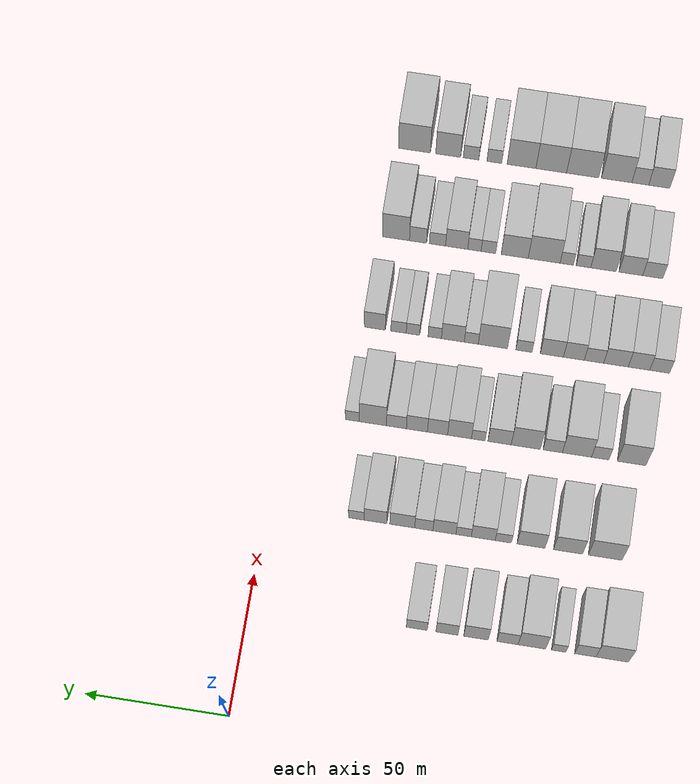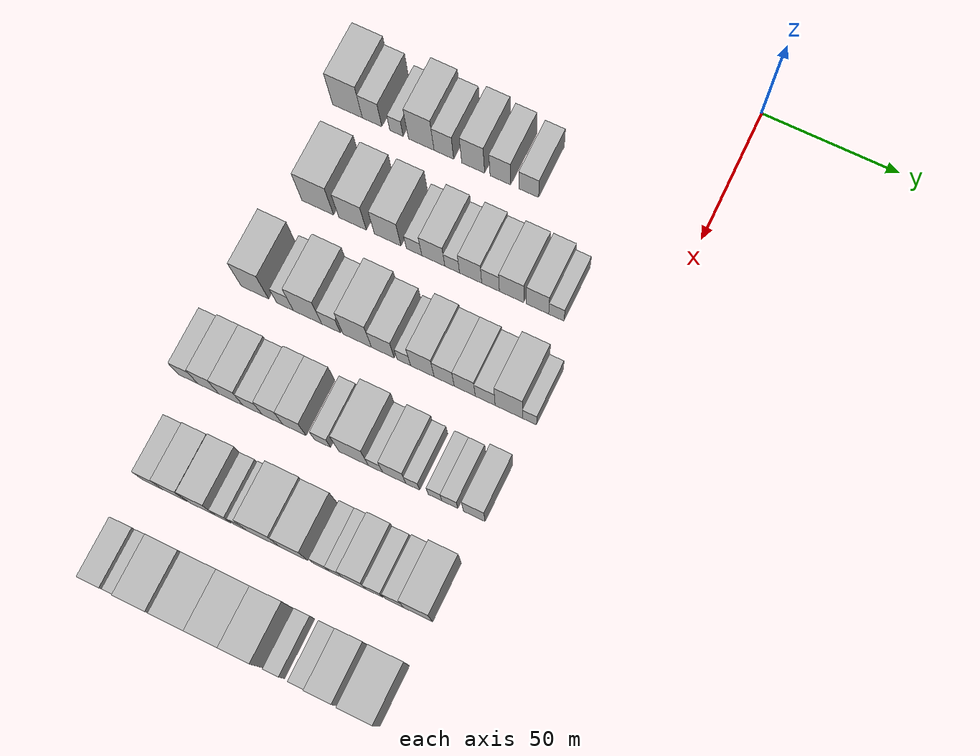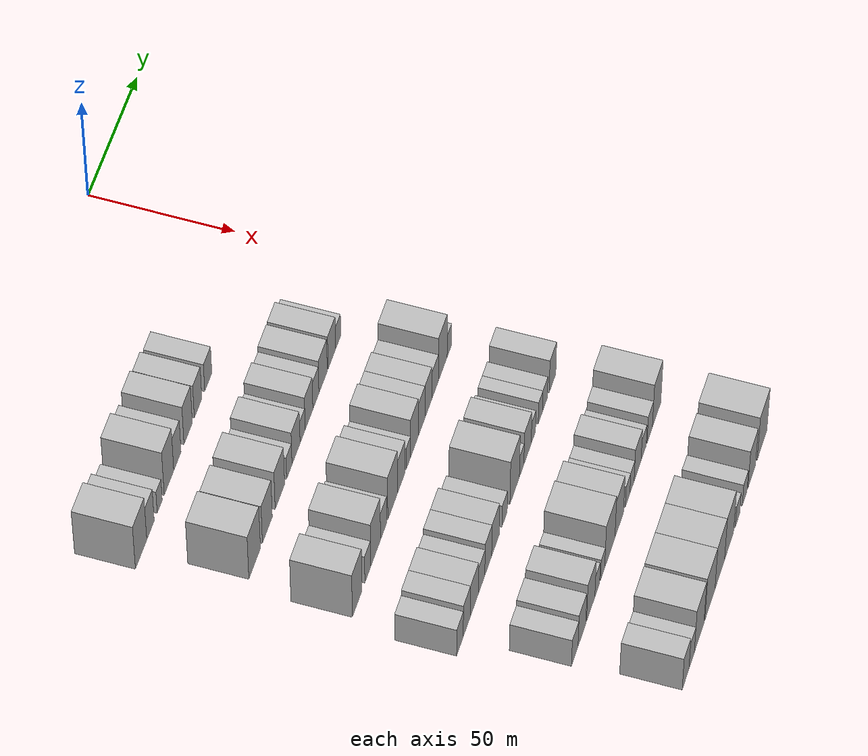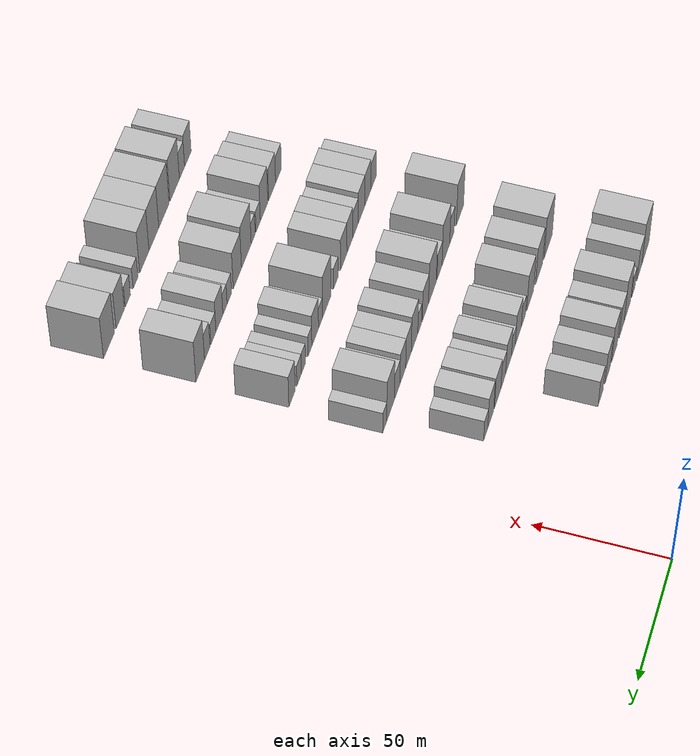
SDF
<sdf version="1.6">
 <world name="default">
  <model name="building_47">
   <static>1</static>
   <pose>50.0000 -126.5769 0 0.000000 0.000000 0.000000</pose>
   <link name="link">
    <pose>0 0 12.00 0 0 0</pose>
    <collision name="collision"><geometry><box><size>20.0000 11.2836 24.0000</size></box></geometry></collision>
    <visual name="visual">
     <cast_shadows>0</cast_shadows>
     <geometry><box><size>20.0000 11.2836 24.0000</size></box></geometry>
     <material>
      <script>
       <uri>model://HANNAS_wall/materials/scripts</uri>
       <uri>model://HANNAS_wall/materials/textures</uri>
       <name>vrc/HANNAS_wall</name>
      </script>
     </material>
    </visual>
   </link>
  </model>
  <model name="building_48">
   <static>1</static>
   <pose>50.0000 -117.2271 0 0.000000 0.000000 0.000000</pose>
   <link name="link">
    <pose>0 0 9.00 0 0 0</pose>
    <collision name="collision"><geometry><box><size>20.0000 7.4160 18.0000</size></box></geometry></collision>
    <visual name="visual">
     <cast_shadows>0</cast_shadows>
     <geometry><box><size>20.0000 7.4160 18.0000</size></box></geometry>
     <material>
      <script>
       <uri>model://HANNAS_wall/materials/scripts</uri>
       <uri>model://HANNAS_wall/materials/textures</uri>
       <name>vrc/HANNAS_wall</name>
      </script>
     </material>
    </visual>
   </link>
  </model>
  <model name="building_49">
   <static>1</static>
   <pose>50.0000 -108.0095 0 0.000000 0.000000 0.000000</pose>
   <link name="link">
    <pose>0 0 6.00 0 0 0</pose>
    <collision name="collision"><geometry><box><size>20.0000 5.0191 12.0000</size></box></geometry></collision>
    <visual name="visual">
     <cast_shadows>0</cast_shadows>
     <geometry><box><size>20.0000 5.0191 12.0000</size></box></geometry>
     <material>
      <script>
       <uri>model://HANNAS_wall/materials/scripts</uri>
       <uri>model://HANNAS_wall/materials/textures</uri>
       <name>vrc/HANNAS_wall</name>
      </script>
     </material>
    </visual>
   </link>
  </model>
  <model name="building_50">
   <static>1</static>
   <pose>50.0000 -98.6902 0 0.000000 0.000000 0.000000</pose>
   <link name="link">
    <pose>0 0 12.00 0 0 0</pose>
    <collision name="collision"><geometry><box><size>20.0000 9.6197 24.0000</size></box></geometry></collision>
    <visual name="visual">
     <cast_shadows>0</cast_shadows>
     <geometry><box><size>20.0000 9.6197 24.0000</size></box></geometry>
     <material>
      <script>
       <uri>model://HANNAS_wall/materials/scripts</uri>
       <uri>model://HANNAS_wall/materials/textures</uri>
       <name>vrc/HANNAS_wall</name>
      </script>
     </material>
    </visual>
   </link>
  </model>
  <model name="building_51">
   <static>1</static>
   <pose>50.0000 -90.1991 0 0.000000 0.000000 0.000000</pose>
   <link name="link">
    <pose>0 0 9.00 0 0 0</pose>
    <collision name="collision"><geometry><box><size>20.0000 7.3624 18.0000</size></box></geometry></collision>
    <visual name="visual">
     <cast_shadows>0</cast_shadows>
     <geometry><box><size>20.0000 7.3624 18.0000</size></box></geometry>
     <material>
      <script>
       <uri>model://HANNAS_wall/materials/scripts</uri>
       <uri>model://HANNAS_wall/materials/textures</uri>
       <name>vrc/HANNAS_wall</name>
      </script>
     </material>
    </visual>
   </link>
  </model>
  <model name="building_52">
   <static>1</static>
   <pose>50.0000 -79.2460 0 0.000000 0.000000 0.000000</pose>
   <link name="link">
    <pose>0 0 10.50 0 0 0</pose>
    <collision name="collision"><geometry><box><size>20.0000 8.5439 21.0000</size></box></geometry></collision>
    <visual name="visual">
     <cast_shadows>0</cast_shadows>
     <geometry><box><size>20.0000 8.5439 21.0000</size></box></geometry>
     <material>
      <script>
       <uri>model://HANNAS_wall/materials/scripts</uri>
       <uri>model://HANNAS_wall/materials/textures</uri>
       <name>vrc/HANNAS_wall</name>
      </script>
     </material>
    </visual>
   </link>
  </model>
  <model name="building_53">
   <static>1</static>
   <pose>50.0000 -69.1303 0 0.000000 0.000000 0.000000</pose>
   <link name="link">
    <pose>0 0 9.00 0 0 0</pose>
    <collision name="collision"><geometry><box><size>20.0000 7.6874 18.0000</size></box></geometry></collision>
    <visual name="visual">
     <cast_shadows>0</cast_shadows>
     <geometry><box><size>20.0000 7.6874 18.0000</size></box></geometry>
     <material>
      <script>
       <uri>model://HANNAS_wall/materials/scripts</uri>
       <uri>model://HANNAS_wall/materials/textures</uri>
       <name>vrc/HANNAS_wall</name>
      </script>
     </material>
    </visual>
   </link>
  </model>
  <model name="building_54">
   <static>1</static>
   <pose>50.0000 -58.6396 0 0.000000 0.000000 0.000000</pose>
   <link name="link">
    <pose>0 0 7.50 0 0 0</pose>
    <collision name="collision"><geometry><box><size>20.0000 7.2940 15.0000</size></box></geometry></collision>
    <visual name="visual">
     <cast_shadows>0</cast_shadows>
     <geometry><box><size>20.0000 7.2940 15.0000</size></box></geometry>
     <material>
      <script>
       <uri>model://HANNAS_wall/materials/scripts</uri>
       <uri>model://HANNAS_wall/materials/textures</uri>
       <name>vrc/HANNAS_wall</name>
      </script>
     </material>
    </visual>
   </link>
  </model>
  <model name="building_169">
   <static>1</static>
   <pose>85.0000 -119.5708 0 0.000000 0.000000 0.000000</pose>
   <link name="link">
    <pose>0 0 12.00 0 0 0</pose>
    <collision name="collision"><geometry><box><size>20.0000 11.8673 24.0000</size></box></geometry></collision>
    <visual name="visual">
     <cast_shadows>0</cast_shadows>
     <geometry><box><size>20.0000 11.8673 24.0000</size></box></geometry>
     <material>
      <script>
       <uri>model://HANNAS_wall/materials/scripts</uri>
       <uri>model://HANNAS_wall/materials/textures</uri>
       <name>vrc/HANNAS_wall</name>
      </script>
     </material>
    </visual>
   </link>
  </model>
  <model name="building_170">
   <static>1</static>
   <pose>85.0000 -106.5362 0 0.000000 0.000000 0.000000</pose>
   <link name="link">
    <pose>0 0 10.50 0 0 0</pose>
    <collision name="collision"><geometry><box><size>20.0000 10.2019 21.0000</size></box></geometry></collision>
    <visual name="visual">
     <cast_shadows>0</cast_shadows>
     <geometry><box><size>20.0000 10.2019 21.0000</size></box></geometry>
     <material>
      <script>
       <uri>model://HANNAS_wall/materials/scripts</uri>
       <uri>model://HANNAS_wall/materials/textures</uri>
       <name>vrc/HANNAS_wall</name>
      </script>
     </material>
    </visual>
   </link>
  </model>
  <model name="building_171">
   <static>1</static>
   <pose>85.0000 -93.5154 0 0.000000 0.000000 0.000000</pose>
   <link name="link">
    <pose>0 0 10.50 0 0 0</pose>
    <collision name="collision"><geometry><box><size>20.0000 9.8396 21.0000</size></box></geometry></collision>
    <visual name="visual">
     <cast_shadows>0</cast_shadows>
     <geometry><box><size>20.0000 9.8396 21.0000</size></box></geometry>
     <material>
      <script>
       <uri>model://HANNAS_wall/materials/scripts</uri>
       <uri>model://HANNAS_wall/materials/textures</uri>
       <name>vrc/HANNAS_wall</name>
      </script>
     </material>
    </visual>
   </link>
  </model>
  <model name="building_172">
   <static>1</static>
   <pose>85.0000 -83.7517 0 0.000000 0.000000 0.000000</pose>
   <link name="link">
    <pose>0 0 6.00 0 0 0</pose>
    <collision name="collision"><geometry><box><size>20.0000 5.6879 12.0000</size></box></geometry></collision>
    <visual name="visual">
     <cast_shadows>0</cast_shadows>
     <geometry><box><size>20.0000 5.6879 12.0000</size></box></geometry>
     <material>
      <script>
       <uri>model://HANNAS_wall/materials/scripts</uri>
       <uri>model://HANNAS_wall/materials/textures</uri>
       <name>vrc/HANNAS_wall</name>
      </script>
     </material>
    </visual>
   </link>
  </model>
  <model name="building_173">
   <static>1</static>
   <pose>85.0000 -76.6770 0 0.000000 0.000000 0.000000</pose>
   <link name="link">
    <pose>0 0 9.00 0 0 0</pose>
    <collision name="collision"><geometry><box><size>20.0000 8.4615 18.0000</size></box></geometry></collision>
    <visual name="visual">
     <cast_shadows>0</cast_shadows>
     <geometry><box><size>20.0000 8.4615 18.0000</size></box></geometry>
     <material>
      <script>
       <uri>model://HANNAS_wall/materials/scripts</uri>
       <uri>model://HANNAS_wall/materials/textures</uri>
       <name>vrc/HANNAS_wall</name>
      </script>
     </material>
    </visual>
   </link>
  </model>
  <model name="building_174">
   <static>1</static>
   <pose>85.0000 -69.7439 0 0.000000 0.000000 0.000000</pose>
   <link name="link">
    <pose>0 0 6.00 0 0 0</pose>
    <collision name="collision"><geometry><box><size>20.0000 5.4047 12.0000</size></box></geometry></collision>
    <visual name="visual">
     <cast_shadows>0</cast_shadows>
     <geometry><box><size>20.0000 5.4047 12.0000</size></box></geometry>
     <material>
      <script>
       <uri>model://HANNAS_wall/materials/scripts</uri>
       <uri>model://HANNAS_wall/materials/textures</uri>
       <name>vrc/HANNAS_wall</name>
      </script>
     </material>
    </visual>
   </link>
  </model>
  <model name="building_175">
   <static>1</static>
   <pose>85.0000 -62.9966 0 0.000000 0.000000 0.000000</pose>
   <link name="link">
    <pose>0 0 9.00 0 0 0</pose>
    <collision name="collision"><geometry><box><size>20.0000 8.0899 18.0000</size></box></geometry></collision>
    <visual name="visual">
     <cast_shadows>0</cast_shadows>
     <geometry><box><size>20.0000 8.0899 18.0000</size></box></geometry>
     <material>
      <script>
       <uri>model://HANNAS_wall/materials/scripts</uri>
       <uri>model://HANNAS_wall/materials/textures</uri>
       <name>vrc/HANNAS_wall</name>
      </script>
     </material>
    </visual>
   </link>
  </model>
  <model name="building_176">
   <static>1</static>
   <pose>85.0000 -55.7360 0 0.000000 0.000000 0.000000</pose>
   <link name="link">
    <pose>0 0 7.50 0 0 0</pose>
    <collision name="collision"><geometry><box><size>20.0000 6.4312 15.0000</size></box></geometry></collision>
    <visual name="visual">
     <cast_shadows>0</cast_shadows>
     <geometry><box><size>20.0000 6.4312 15.0000</size></box></geometry>
     <material>
      <script>
       <uri>model://HANNAS_wall/materials/scripts</uri>
       <uri>model://HANNAS_wall/materials/textures</uri>
       <name>vrc/HANNAS_wall</name>
      </script>
     </material>
    </visual>
   </link>
  </model>
  <model name="building_177">
   <static>1</static>
   <pose>85.0000 -48.1093 0 0.000000 0.000000 0.000000</pose>
   <link name="link">
    <pose>0 0 9.00 0 0 0</pose>
    <collision name="collision"><geometry><box><size>20.0000 8.8223 18.0000</size></box></geometry></collision>
    <visual name="visual">
     <cast_shadows>0</cast_shadows>
     <geometry><box><size>20.0000 8.8223 18.0000</size></box></geometry>
     <material>
      <script>
       <uri>model://HANNAS_wall/materials/scripts</uri>
       <uri>model://HANNAS_wall/materials/textures</uri>
       <name>vrc/HANNAS_wall</name>
      </script>
     </material>
    </visual>
   </link>
  </model>
  <model name="building_178">
   <static>1</static>
   <pose>85.0000 -38.6795 0 0.000000 0.000000 0.000000</pose>
   <link name="link">
    <pose>0 0 9.00 0 0 0</pose>
    <collision name="collision"><geometry><box><size>20.0000 8.0372 18.0000</size></box></geometry></collision>
    <visual name="visual">
     <cast_shadows>0</cast_shadows>
     <geometry><box><size>20.0000 8.0372 18.0000</size></box></geometry>
     <material>
      <script>
       <uri>model://HANNAS_wall/materials/scripts</uri>
       <uri>model://HANNAS_wall/materials/textures</uri>
       <name>vrc/HANNAS_wall</name>
      </script>
     </material>
    </visual>
   </link>
  </model>
  <model name="building_179">
   <static>1</static>
   <pose>85.0000 -31.9046 0 0.000000 0.000000 0.000000</pose>
   <link name="link">
    <pose>0 0 6.00 0 0 0</pose>
    <collision name="collision"><geometry><box><size>20.0000 5.5126 12.0000</size></box></geometry></collision>
    <visual name="visual">
     <cast_shadows>0</cast_shadows>
     <geometry><box><size>20.0000 5.5126 12.0000</size></box></geometry>
     <material>
      <script>
       <uri>model://HANNAS_wall/materials/scripts</uri>
       <uri>model://HANNAS_wall/materials/textures</uri>
       <name>vrc/HANNAS_wall</name>
      </script>
     </material>
    </visual>
   </link>
  </model>
  <model name="building_295">
   <static>1</static>
   <pose>120.0000 -124.4031 0 0.000000 0.000000 0.000000</pose>
   <link name="link">
    <pose>0 0 12.00 0 0 0</pose>
    <collision name="collision"><geometry><box><size>20.0000 10.1419 24.0000</size></box></geometry></collision>
    <visual name="visual">
     <cast_shadows>0</cast_shadows>
     <geometry><box><size>20.0000 10.1419 24.0000</size></box></geometry>
     <material>
      <script>
       <uri>model://HANNAS_wall/materials/scripts</uri>
       <uri>model://HANNAS_wall/materials/textures</uri>
       <name>vrc/HANNAS_wall</name>
      </script>
     </material>
    </visual>
   </link>
  </model>
  <model name="building_296">
   <static>1</static>
   <pose>120.0000 -113.2567 0 0.000000 0.000000 0.000000</pose>
   <link name="link">
    <pose>0 0 7.50 0 0 0</pose>
    <collision name="collision"><geometry><box><size>20.0000 6.1509 15.0000</size></box></geometry></collision>
    <visual name="visual">
     <cast_shadows>0</cast_shadows>
     <geometry><box><size>20.0000 6.1509 15.0000</size></box></geometry>
     <material>
      <script>
       <uri>model://HANNAS_wall/materials/scripts</uri>
       <uri>model://HANNAS_wall/materials/textures</uri>
       <name>vrc/HANNAS_wall</name>
      </script>
     </material>
    </visual>
   </link>
  </model>
  <model name="building_297">
   <static>1</static>
   <pose>120.0000 -104.9842 0 0.000000 0.000000 0.000000</pose>
   <link name="link">
    <pose>0 0 12.00 0 0 0</pose>
    <collision name="collision"><geometry><box><size>20.0000 10.3941 24.0000</size></box></geometry></collision>
    <visual name="visual">
     <cast_shadows>0</cast_shadows>
     <geometry><box><size>20.0000 10.3941 24.0000</size></box></geometry>
     <material>
      <script>
       <uri>model://HANNAS_wall/materials/scripts</uri>
       <uri>model://HANNAS_wall/materials/textures</uri>
       <name>vrc/HANNAS_wall</name>
      </script>
     </material>
    </visual>
   </link>
  </model>
  <model name="building_298">
   <static>1</static>
   <pose>120.0000 -96.3675 0 0.000000 0.000000 0.000000</pose>
   <link name="link">
    <pose>0 0 7.50 0 0 0</pose>
    <collision name="collision"><geometry><box><size>20.0000 6.8393 15.0000</size></box></geometry></collision>
    <visual name="visual">
     <cast_shadows>0</cast_shadows>
     <geometry><box><size>20.0000 6.8393 15.0000</size></box></geometry>
     <material>
      <script>
       <uri>model://HANNAS_wall/materials/scripts</uri>
       <uri>model://HANNAS_wall/materials/textures</uri>
       <name>vrc/HANNAS_wall</name>
      </script>
     </material>
    </visual>
   </link>
  </model>
  <model name="building_299">
   <static>1</static>
   <pose>120.0000 -86.7561 0 0.000000 0.000000 0.000000</pose>
   <link name="link">
    <pose>0 0 12.00 0 0 0</pose>
    <collision name="collision"><geometry><box><size>20.0000 10.3836 24.0000</size></box></geometry></collision>
    <visual name="visual">
     <cast_shadows>0</cast_shadows>
     <geometry><box><size>20.0000 10.3836 24.0000</size></box></geometry>
     <material>
      <script>
       <uri>model://HANNAS_wall/materials/scripts</uri>
       <uri>model://HANNAS_wall/materials/textures</uri>
       <name>vrc/HANNAS_wall</name>
      </script>
     </material>
    </visual>
   </link>
  </model>
  <model name="building_300">
   <static>1</static>
   <pose>120.0000 -77.4194 0 0.000000 0.000000 0.000000</pose>
   <link name="link">
    <pose>0 0 9.00 0 0 0</pose>
    <collision name="collision"><geometry><box><size>20.0000 8.2896 18.0000</size></box></geometry></collision>
    <visual name="visual">
     <cast_shadows>0</cast_shadows>
     <geometry><box><size>20.0000 8.2896 18.0000</size></box></geometry>
     <material>
      <script>
       <uri>model://HANNAS_wall/materials/scripts</uri>
       <uri>model://HANNAS_wall/materials/textures</uri>
       <name>vrc/HANNAS_wall</name>
      </script>
     </material>
    </visual>
   </link>
  </model>
  <model name="building_301">
   <static>1</static>
   <pose>120.0000 -69.8327 0 0.000000 0.000000 0.000000</pose>
   <link name="link">
    <pose>0 0 6.00 0 0 0</pose>
    <collision name="collision"><geometry><box><size>20.0000 4.8839 12.0000</size></box></geometry></collision>
    <visual name="visual">
     <cast_shadows>0</cast_shadows>
     <geometry><box><size>20.0000 4.8839 12.0000</size></box></geometry>
     <material>
      <script>
       <uri>model://HANNAS_wall/materials/scripts</uri>
       <uri>model://HANNAS_wall/materials/textures</uri>
       <name>vrc/HANNAS_wall</name>
      </script>
     </material>
    </visual>
   </link>
  </model>
  <model name="building_302">
   <static>1</static>
   <pose>120.0000 -63.1369 0 0.000000 0.000000 0.000000</pose>
   <link name="link">
    <pose>0 0 10.50 0 0 0</pose>
    <collision name="collision"><geometry><box><size>20.0000 8.5077 21.0000</size></box></geometry></collision>
    <visual name="visual">
     <cast_shadows>0</cast_shadows>
     <geometry><box><size>20.0000 8.5077 21.0000</size></box></geometry>
     <material>
      <script>
       <uri>model://HANNAS_wall/materials/scripts</uri>
       <uri>model://HANNAS_wall/materials/textures</uri>
       <name>vrc/HANNAS_wall</name>
      </script>
     </material>
    </visual>
   </link>
  </model>
  <model name="building_303">
   <static>1</static>
   <pose>120.0000 -55.2735 0 0.000000 0.000000 0.000000</pose>
   <link name="link">
    <pose>0 0 9.00 0 0 0</pose>
    <collision name="collision"><geometry><box><size>20.0000 7.2191 18.0000</size></box></geometry></collision>
    <visual name="visual">
     <cast_shadows>0</cast_shadows>
     <geometry><box><size>20.0000 7.2191 18.0000</size></box></geometry>
     <material>
      <script>
       <uri>model://HANNAS_wall/materials/scripts</uri>
       <uri>model://HANNAS_wall/materials/textures</uri>
       <name>vrc/HANNAS_wall</name>
      </script>
     </material>
    </visual>
   </link>
  </model>
  <model name="building_304">
   <static>1</static>
   <pose>120.0000 -47.9089 0 0.000000 0.000000 0.000000</pose>
   <link name="link">
    <pose>0 0 9.00 0 0 0</pose>
    <collision name="collision"><geometry><box><size>20.0000 7.5101 18.0000</size></box></geometry></collision>
    <visual name="visual">
     <cast_shadows>0</cast_shadows>
     <geometry><box><size>20.0000 7.5101 18.0000</size></box></geometry>
     <material>
      <script>
       <uri>model://HANNAS_wall/materials/scripts</uri>
       <uri>model://HANNAS_wall/materials/textures</uri>
       <name>vrc/HANNAS_wall</name>
      </script>
     </material>
    </visual>
   </link>
  </model>
  <model name="building_305">
   <static>1</static>
   <pose>120.0000 -40.5952 0 0.000000 0.000000 0.000000</pose>
   <link name="link">
    <pose>0 0 7.50 0 0 0</pose>
    <collision name="collision"><geometry><box><size>20.0000 7.1173 15.0000</size></box></geometry></collision>
    <visual name="visual">
     <cast_shadows>0</cast_shadows>
     <geometry><box><size>20.0000 7.1173 15.0000</size></box></geometry>
     <material>
      <script>
       <uri>model://HANNAS_wall/materials/scripts</uri>
       <uri>model://HANNAS_wall/materials/textures</uri>
       <name>vrc/HANNAS_wall</name>
      </script>
     </material>
    </visual>
   </link>
  </model>
  <model name="building_306">
   <static>1</static>
   <pose>120.0000 -32.1875 0 0.000000 0.000000 0.000000</pose>
   <link name="link">
    <pose>0 0 12.00 0 0 0</pose>
    <collision name="collision"><geometry><box><size>20.0000 9.6980 24.0000</size></box></geometry></collision>
    <visual name="visual">
     <cast_shadows>0</cast_shadows>
     <geometry><box><size>20.0000 9.6980 24.0000</size></box></geometry>
     <material>
      <script>
       <uri>model://HANNAS_wall/materials/scripts</uri>
       <uri>model://HANNAS_wall/materials/textures</uri>
       <name>vrc/HANNAS_wall</name>
      </script>
     </material>
    </visual>
   </link>
  </model>
  <model name="building_307">
   <static>1</static>
   <pose>120.0000 -24.8400 0 0.000000 0.000000 0.000000</pose>
   <link name="link">
    <pose>0 0 6.00 0 0 0</pose>
    <collision name="collision"><geometry><box><size>20.0000 4.9970 12.0000</size></box></geometry></collision>
    <visual name="visual">
     <cast_shadows>0</cast_shadows>
     <geometry><box><size>20.0000 4.9970 12.0000</size></box></geometry>
     <material>
      <script>
       <uri>model://HANNAS_wall/materials/scripts</uri>
       <uri>model://HANNAS_wall/materials/textures</uri>
       <name>vrc/HANNAS_wall</name>
      </script>
     </material>
    </visual>
   </link>
  </model>
  <model name="building_416">
   <static>1</static>
   <pose>155.0000 -130.0409 0 0.000000 0.000000 0.000000</pose>
   <link name="link">
    <pose>0 0 7.50 0 0 0</pose>
    <collision name="collision"><geometry><box><size>20.0000 7.1330 15.0000</size></box></geometry></collision>
    <visual name="visual">
     <cast_shadows>0</cast_shadows>
     <geometry><box><size>20.0000 7.1330 15.0000</size></box></geometry>
     <material>
      <script>
       <uri>model://HANNAS_wall/materials/scripts</uri>
       <uri>model://HANNAS_wall/materials/textures</uri>
       <name>vrc/HANNAS_wall</name>
      </script>
     </material>
    </visual>
   </link>
  </model>
  <model name="building_417">
   <static>1</static>
   <pose>155.0000 -122.6177 0 0.000000 0.000000 0.000000</pose>
   <link name="link">
    <pose>0 0 9.00 0 0 0</pose>
    <collision name="collision"><geometry><box><size>20.0000 7.7134 18.0000</size></box></geometry></collision>
    <visual name="visual">
     <cast_shadows>0</cast_shadows>
     <geometry><box><size>20.0000 7.7134 18.0000</size></box></geometry>
     <material>
      <script>
       <uri>model://HANNAS_wall/materials/scripts</uri>
       <uri>model://HANNAS_wall/materials/textures</uri>
       <name>vrc/HANNAS_wall</name>
      </script>
     </material>
    </visual>
   </link>
  </model>
  <model name="building_418">
   <static>1</static>
   <pose>155.0000 -114.3627 0 0.000000 0.000000 0.000000</pose>
   <link name="link">
    <pose>0 0 9.00 0 0 0</pose>
    <collision name="collision"><geometry><box><size>20.0000 8.7966 18.0000</size></box></geometry></collision>
    <visual name="visual">
     <cast_shadows>0</cast_shadows>
     <geometry><box><size>20.0000 8.7966 18.0000</size></box></geometry>
     <material>
      <script>
       <uri>model://HANNAS_wall/materials/scripts</uri>
       <uri>model://HANNAS_wall/materials/textures</uri>
       <name>vrc/HANNAS_wall</name>
      </script>
     </material>
    </visual>
   </link>
  </model>
  <model name="building_419">
   <static>1</static>
   <pose>155.0000 -106.4619 0 0.000000 0.000000 0.000000</pose>
   <link name="link">
    <pose>0 0 7.50 0 0 0</pose>
    <collision name="collision"><geometry><box><size>20.0000 7.0050 15.0000</size></box></geometry></collision>
    <visual name="visual">
     <cast_shadows>0</cast_shadows>
     <geometry><box><size>20.0000 7.0050 15.0000</size></box></geometry>
     <material>
      <script>
       <uri>model://HANNAS_wall/materials/scripts</uri>
       <uri>model://HANNAS_wall/materials/textures</uri>
       <name>vrc/HANNAS_wall</name>
      </script>
     </material>
    </visual>
   </link>
  </model>
  <model name="building_420">
   <static>1</static>
   <pose>155.0000 -99.2072 0 0.000000 0.000000 0.000000</pose>
   <link name="link">
    <pose>0 0 9.00 0 0 0</pose>
    <collision name="collision"><geometry><box><size>20.0000 7.5044 18.0000</size></box></geometry></collision>
    <visual name="visual">
     <cast_shadows>0</cast_shadows>
     <geometry><box><size>20.0000 7.5044 18.0000</size></box></geometry>
     <material>
      <script>
       <uri>model://HANNAS_wall/materials/scripts</uri>
       <uri>model://HANNAS_wall/materials/textures</uri>
       <name>vrc/HANNAS_wall</name>
      </script>
     </material>
    </visual>
   </link>
  </model>
  <model name="building_421">
   <static>1</static>
   <pose>155.0000 -91.2810 0 0.000000 0.000000 0.000000</pose>
   <link name="link">
    <pose>0 0 9.00 0 0 0</pose>
    <collision name="collision"><geometry><box><size>20.0000 8.3480 18.0000</size></box></geometry></collision>
    <visual name="visual">
     <cast_shadows>0</cast_shadows>
     <geometry><box><size>20.0000 8.3480 18.0000</size></box></geometry>
     <material>
      <script>
       <uri>model://HANNAS_wall/materials/scripts</uri>
       <uri>model://HANNAS_wall/materials/textures</uri>
       <name>vrc/HANNAS_wall</name>
      </script>
     </material>
    </visual>
   </link>
  </model>
  <model name="building_422">
   <static>1</static>
   <pose>155.0000 -81.1856 0 0.000000 0.000000 0.000000</pose>
   <link name="link">
    <pose>0 0 6.00 0 0 0</pose>
    <collision name="collision"><geometry><box><size>20.0000 5.8427 12.0000</size></box></geometry></collision>
    <visual name="visual">
     <cast_shadows>0</cast_shadows>
     <geometry><box><size>20.0000 5.8427 12.0000</size></box></geometry>
     <material>
      <script>
       <uri>model://HANNAS_wall/materials/scripts</uri>
       <uri>model://HANNAS_wall/materials/textures</uri>
       <name>vrc/HANNAS_wall</name>
      </script>
     </material>
    </visual>
   </link>
  </model>
  <model name="building_423">
   <static>1</static>
   <pose>155.0000 -69.9899 0 0.000000 0.000000 0.000000</pose>
   <link name="link">
    <pose>0 0 12.00 0 0 0</pose>
    <collision name="collision"><geometry><box><size>20.0000 10.5487 24.0000</size></box></geometry></collision>
    <visual name="visual">
     <cast_shadows>0</cast_shadows>
     <geometry><box><size>20.0000 10.5487 24.0000</size></box></geometry>
     <material>
      <script>
       <uri>model://HANNAS_wall/materials/scripts</uri>
       <uri>model://HANNAS_wall/materials/textures</uri>
       <name>vrc/HANNAS_wall</name>
      </script>
     </material>
    </visual>
   </link>
  </model>
  <model name="building_424">
   <static>1</static>
   <pose>155.0000 -62.1846 0 0.000000 0.000000 0.000000</pose>
   <link name="link">
    <pose>0 0 6.00 0 0 0</pose>
    <collision name="collision"><geometry><box><size>20.0000 5.0617 12.0000</size></box></geometry></collision>
    <visual name="visual">
     <cast_shadows>0</cast_shadows>
     <geometry><box><size>20.0000 5.0617 12.0000</size></box></geometry>
     <material>
      <script>
       <uri>model://HANNAS_wall/materials/scripts</uri>
       <uri>model://HANNAS_wall/materials/textures</uri>
       <name>vrc/HANNAS_wall</name>
      </script>
     </material>
    </visual>
   </link>
  </model>
  <model name="building_425">
   <static>1</static>
   <pose>155.0000 -55.5262 0 0.000000 0.000000 0.000000</pose>
   <link name="link">
    <pose>0 0 9.00 0 0 0</pose>
    <collision name="collision"><geometry><box><size>20.0000 8.2551 18.0000</size></box></geometry></collision>
    <visual name="visual">
     <cast_shadows>0</cast_shadows>
     <geometry><box><size>20.0000 8.2551 18.0000</size></box></geometry>
     <material>
      <script>
       <uri>model://HANNAS_wall/materials/scripts</uri>
       <uri>model://HANNAS_wall/materials/textures</uri>
       <name>vrc/HANNAS_wall</name>
      </script>
     </material>
    </visual>
   </link>
  </model>
  <model name="building_426">
   <static>1</static>
   <pose>155.0000 -48.9651 0 0.000000 0.000000 0.000000</pose>
   <link name="link">
    <pose>0 0 6.00 0 0 0</pose>
    <collision name="collision"><geometry><box><size>20.0000 4.8670 12.0000</size></box></geometry></collision>
    <visual name="visual">
     <cast_shadows>0</cast_shadows>
     <geometry><box><size>20.0000 4.8670 12.0000</size></box></geometry>
     <material>
      <script>
       <uri>model://HANNAS_wall/materials/scripts</uri>
       <uri>model://HANNAS_wall/materials/textures</uri>
       <name>vrc/HANNAS_wall</name>
      </script>
     </material>
    </visual>
   </link>
  </model>
  <model name="building_427">
   <static>1</static>
   <pose>155.0000 -41.1025 0 0.000000 0.000000 0.000000</pose>
   <link name="link">
    <pose>0 0 6.00 0 0 0</pose>
    <collision name="collision"><geometry><box><size>20.0000 4.8581 12.0000</size></box></geometry></collision>
    <visual name="visual">
     <cast_shadows>0</cast_shadows>
     <geometry><box><size>20.0000 4.8581 12.0000</size></box></geometry>
     <material>
      <script>
       <uri>model://HANNAS_wall/materials/scripts</uri>
       <uri>model://HANNAS_wall/materials/textures</uri>
       <name>vrc/HANNAS_wall</name>
      </script>
     </material>
    </visual>
   </link>
  </model>
  <model name="building_428">
   <static>1</static>
   <pose>155.0000 -35.8817 0 0.000000 0.000000 0.000000</pose>
   <link name="link">
    <pose>0 0 6.00 0 0 0</pose>
    <collision name="collision"><geometry><box><size>20.0000 5.5835 12.0000</size></box></geometry></collision>
    <visual name="visual">
     <cast_shadows>0</cast_shadows>
     <geometry><box><size>20.0000 5.5835 12.0000</size></box></geometry>
     <material>
      <script>
       <uri>model://HANNAS_wall/materials/scripts</uri>
       <uri>model://HANNAS_wall/materials/textures</uri>
       <name>vrc/HANNAS_wall</name>
      </script>
     </material>
    </visual>
   </link>
  </model>
  <model name="building_429">
   <static>1</static>
   <pose>155.0000 -27.2959 0 0.000000 0.000000 0.000000</pose>
   <link name="link">
    <pose>0 0 9.00 0 0 0</pose>
    <collision name="collision"><geometry><box><size>20.0000 7.5882 18.0000</size></box></geometry></collision>
    <visual name="visual">
     <cast_shadows>0</cast_shadows>
     <geometry><box><size>20.0000 7.5882 18.0000</size></box></geometry>
     <material>
      <script>
       <uri>model://HANNAS_wall/materials/scripts</uri>
       <uri>model://HANNAS_wall/materials/textures</uri>
       <name>vrc/HANNAS_wall</name>
      </script>
     </material>
    </visual>
   </link>
  </model>
  <model name="building_548">
   <static>1</static>
   <pose>190.0000 -123.2478 0 0.000000 0.000000 0.000000</pose>
   <link name="link">
    <pose>0 0 7.50 0 0 0</pose>
    <collision name="collision"><geometry><box><size>20.0000 7.3060 15.0000</size></box></geometry></collision>
    <visual name="visual">
     <cast_shadows>0</cast_shadows>
     <geometry><box><size>20.0000 7.3060 15.0000</size></box></geometry>
     <material>
      <script>
       <uri>model://HANNAS_wall/materials/scripts</uri>
       <uri>model://HANNAS_wall/materials/textures</uri>
       <name>vrc/HANNAS_wall</name>
      </script>
     </material>
    </visual>
   </link>
  </model>
  <model name="building_549">
   <static>1</static>
   <pose>190.0000 -115.2817 0 0.000000 0.000000 0.000000</pose>
   <link name="link">
    <pose>0 0 9.00 0 0 0</pose>
    <collision name="collision"><geometry><box><size>20.0000 8.6262 18.0000</size></box></geometry></collision>
    <visual name="visual">
     <cast_shadows>0</cast_shadows>
     <geometry><box><size>20.0000 8.6262 18.0000</size></box></geometry>
     <material>
      <script>
       <uri>model://HANNAS_wall/materials/scripts</uri>
       <uri>model://HANNAS_wall/materials/textures</uri>
       <name>vrc/HANNAS_wall</name>
      </script>
     </material>
    </visual>
   </link>
  </model>
  <model name="building_550">
   <static>1</static>
   <pose>190.0000 -105.3134 0 0.000000 0.000000 0.000000</pose>
   <link name="link">
    <pose>0 0 10.50 0 0 0</pose>
    <collision name="collision"><geometry><box><size>20.0000 9.3105 21.0000</size></box></geometry></collision>
    <visual name="visual">
     <cast_shadows>0</cast_shadows>
     <geometry><box><size>20.0000 9.3105 21.0000</size></box></geometry>
     <material>
      <script>
       <uri>model://HANNAS_wall/materials/scripts</uri>
       <uri>model://HANNAS_wall/materials/textures</uri>
       <name>vrc/HANNAS_wall</name>
      </script>
     </material>
    </visual>
   </link>
  </model>
  <model name="building_551">
   <static>1</static>
   <pose>190.0000 -98.0036 0 0.000000 0.000000 0.000000</pose>
   <link name="link">
    <pose>0 0 6.00 0 0 0</pose>
    <collision name="collision"><geometry><box><size>20.0000 5.3091 12.0000</size></box></geometry></collision>
    <visual name="visual">
     <cast_shadows>0</cast_shadows>
     <geometry><box><size>20.0000 5.3091 12.0000</size></box></geometry>
     <material>
      <script>
       <uri>model://HANNAS_wall/materials/scripts</uri>
       <uri>model://HANNAS_wall/materials/textures</uri>
       <name>vrc/HANNAS_wall</name>
      </script>
     </material>
    </visual>
   </link>
  </model>
  <model name="building_552">
   <static>1</static>
   <pose>190.0000 -91.9282 0 0.000000 0.000000 0.000000</pose>
   <link name="link">
    <pose>0 0 6.00 0 0 0</pose>
    <collision name="collision"><geometry><box><size>20.0000 4.8417 12.0000</size></box></geometry></collision>
    <visual name="visual">
     <cast_shadows>0</cast_shadows>
     <geometry><box><size>20.0000 4.8417 12.0000</size></box></geometry>
     <material>
      <script>
       <uri>model://HANNAS_wall/materials/scripts</uri>
       <uri>model://HANNAS_wall/materials/textures</uri>
       <name>vrc/HANNAS_wall</name>
      </script>
     </material>
    </visual>
   </link>
  </model>
  <model name="building_553">
   <static>1</static>
   <pose>190.0000 -83.6735 0 0.000000 0.000000 0.000000</pose>
   <link name="link">
    <pose>0 0 12.00 0 0 0</pose>
    <collision name="collision"><geometry><box><size>20.0000 11.6678 24.0000</size></box></geometry></collision>
    <visual name="visual">
     <cast_shadows>0</cast_shadows>
     <geometry><box><size>20.0000 11.6678 24.0000</size></box></geometry>
     <material>
      <script>
       <uri>model://HANNAS_wall/materials/scripts</uri>
       <uri>model://HANNAS_wall/materials/textures</uri>
       <name>vrc/HANNAS_wall</name>
      </script>
     </material>
    </visual>
   </link>
  </model>
  <model name="building_554">
   <static>1</static>
   <pose>190.0000 -72.9176 0 0.000000 0.000000 0.000000</pose>
   <link name="link">
    <pose>0 0 10.50 0 0 0</pose>
    <collision name="collision"><geometry><box><size>20.0000 9.8439 21.0000</size></box></geometry></collision>
    <visual name="visual">
     <cast_shadows>0</cast_shadows>
     <geometry><box><size>20.0000 9.8439 21.0000</size></box></geometry>
     <material>
      <script>
       <uri>model://HANNAS_wall/materials/scripts</uri>
       <uri>model://HANNAS_wall/materials/textures</uri>
       <name>vrc/HANNAS_wall</name>
      </script>
     </material>
    </visual>
   </link>
  </model>
  <model name="building_555">
   <static>1</static>
   <pose>190.0000 -63.3118 0 0.000000 0.000000 0.000000</pose>
   <link name="link">
    <pose>0 0 6.00 0 0 0</pose>
    <collision name="collision"><geometry><box><size>20.0000 5.3678 12.0000</size></box></geometry></collision>
    <visual name="visual">
     <cast_shadows>0</cast_shadows>
     <geometry><box><size>20.0000 5.3678 12.0000</size></box></geometry>
     <material>
      <script>
       <uri>model://HANNAS_wall/materials/scripts</uri>
       <uri>model://HANNAS_wall/materials/textures</uri>
       <name>vrc/HANNAS_wall</name>
      </script>
     </material>
    </visual>
   </link>
  </model>
  <model name="building_556">
   <static>1</static>
   <pose>190.0000 -58.1816 0 0.000000 0.000000 0.000000</pose>
   <link name="link">
    <pose>0 0 6.00 0 0 0</pose>
    <collision name="collision"><geometry><box><size>20.0000 4.8926 12.0000</size></box></geometry></collision>
    <visual name="visual">
     <cast_shadows>0</cast_shadows>
     <geometry><box><size>20.0000 4.8926 12.0000</size></box></geometry>
     <material>
      <script>
       <uri>model://HANNAS_wall/materials/scripts</uri>
       <uri>model://HANNAS_wall/materials/textures</uri>
       <name>vrc/HANNAS_wall</name>
      </script>
     </material>
    </visual>
   </link>
  </model>
  <model name="building_557">
   <static>1</static>
   <pose>190.0000 -51.6828 0 0.000000 0.000000 0.000000</pose>
   <link name="link">
    <pose>0 0 9.00 0 0 0</pose>
    <collision name="collision"><geometry><box><size>20.0000 8.1050 18.0000</size></box></geometry></collision>
    <visual name="visual">
     <cast_shadows>0</cast_shadows>
     <geometry><box><size>20.0000 8.1050 18.0000</size></box></geometry>
     <material>
      <script>
       <uri>model://HANNAS_wall/materials/scripts</uri>
       <uri>model://HANNAS_wall/materials/textures</uri>
       <name>vrc/HANNAS_wall</name>
      </script>
     </material>
    </visual>
   </link>
  </model>
  <model name="building_558">
   <static>1</static>
   <pose>190.0000 -44.6524 0 0.000000 0.000000 0.000000</pose>
   <link name="link">
    <pose>0 0 6.00 0 0 0</pose>
    <collision name="collision"><geometry><box><size>20.0000 5.9557 12.0000</size></box></geometry></collision>
    <visual name="visual">
     <cast_shadows>0</cast_shadows>
     <geometry><box><size>20.0000 5.9557 12.0000</size></box></geometry>
     <material>
      <script>
       <uri>model://HANNAS_wall/materials/scripts</uri>
       <uri>model://HANNAS_wall/materials/textures</uri>
       <name>vrc/HANNAS_wall</name>
      </script>
     </material>
    </visual>
   </link>
  </model>
  <model name="building_559">
   <static>1</static>
   <pose>190.0000 -37.5330 0 0.000000 0.000000 0.000000</pose>
   <link name="link">
    <pose>0 0 7.50 0 0 0</pose>
    <collision name="collision"><geometry><box><size>20.0000 6.2831 15.0000</size></box></geometry></collision>
    <visual name="visual">
     <cast_shadows>0</cast_shadows>
     <geometry><box><size>20.0000 6.2831 15.0000</size></box></geometry>
     <material>
      <script>
       <uri>model://HANNAS_wall/materials/scripts</uri>
       <uri>model://HANNAS_wall/materials/textures</uri>
       <name>vrc/HANNAS_wall</name>
      </script>
     </material>
    </visual>
   </link>
  </model>
  <model name="building_560">
   <static>1</static>
   <pose>190.0000 -29.4251 0 0.000000 0.000000 0.000000</pose>
   <link name="link">
    <pose>0 0 12.00 0 0 0</pose>
    <collision name="collision"><geometry><box><size>20.0000 9.9327 24.0000</size></box></geometry></collision>
    <visual name="visual">
     <cast_shadows>0</cast_shadows>
     <geometry><box><size>20.0000 9.9327 24.0000</size></box></geometry>
     <material>
      <script>
       <uri>model://HANNAS_wall/materials/scripts</uri>
       <uri>model://HANNAS_wall/materials/textures</uri>
       <name>vrc/HANNAS_wall</name>
      </script>
     </material>
    </visual>
   </link>
  </model>
  <model name="building_681">
   <static>1</static>
   <pose>225.0000 -121.3058 0 0.000000 0.000000 0.000000</pose>
   <link name="link">
    <pose>0 0 9.00 0 0 0</pose>
    <collision name="collision"><geometry><box><size>20.0000 7.7989 18.0000</size></box></geometry></collision>
    <visual name="visual">
     <cast_shadows>0</cast_shadows>
     <geometry><box><size>20.0000 7.7989 18.0000</size></box></geometry>
     <material>
      <script>
       <uri>model://HANNAS_wall/materials/scripts</uri>
       <uri>model://HANNAS_wall/materials/textures</uri>
       <name>vrc/HANNAS_wall</name>
      </script>
     </material>
    </visual>
   </link>
  </model>
  <model name="building_682">
   <static>1</static>
   <pose>225.0000 -114.3039 0 0.000000 0.000000 0.000000</pose>
   <link name="link">
    <pose>0 0 7.50 0 0 0</pose>
    <collision name="collision"><geometry><box><size>20.0000 6.2049 15.0000</size></box></geometry></collision>
    <visual name="visual">
     <cast_shadows>0</cast_shadows>
     <geometry><box><size>20.0000 6.2049 15.0000</size></box></geometry>
     <material>
      <script>
       <uri>model://HANNAS_wall/materials/scripts</uri>
       <uri>model://HANNAS_wall/materials/textures</uri>
       <name>vrc/HANNAS_wall</name>
      </script>
     </material>
    </visual>
   </link>
  </model>
  <model name="building_683">
   <static>1</static>
   <pose>225.0000 -105.6137 0 0.000000 0.000000 0.000000</pose>
   <link name="link">
    <pose>0 0 12.00 0 0 0</pose>
    <collision name="collision"><geometry><box><size>20.0000 11.1754 24.0000</size></box></geometry></collision>
    <visual name="visual">
     <cast_shadows>0</cast_shadows>
     <geometry><box><size>20.0000 11.1754 24.0000</size></box></geometry>
     <material>
      <script>
       <uri>model://HANNAS_wall/materials/scripts</uri>
       <uri>model://HANNAS_wall/materials/textures</uri>
       <name>vrc/HANNAS_wall</name>
      </script>
     </material>
    </visual>
   </link>
  </model>
  <model name="building_684">
   <static>1</static>
   <pose>225.0000 -93.0781 0 0.000000 0.000000 0.000000</pose>
   <link name="link">
    <pose>0 0 12.00 0 0 0</pose>
    <collision name="collision"><geometry><box><size>20.0000 11.8959 24.0000</size></box></geometry></collision>
    <visual name="visual">
     <cast_shadows>0</cast_shadows>
     <geometry><box><size>20.0000 11.8959 24.0000</size></box></geometry>
     <material>
      <script>
       <uri>model://HANNAS_wall/materials/scripts</uri>
       <uri>model://HANNAS_wall/materials/textures</uri>
       <name>vrc/HANNAS_wall</name>
      </script>
     </material>
    </visual>
   </link>
  </model>
  <model name="building_685">
   <static>1</static>
   <pose>225.0000 -81.4752 0 0.000000 0.000000 0.000000</pose>
   <link name="link">
    <pose>0 0 12.00 0 0 0</pose>
    <collision name="collision"><geometry><box><size>20.0000 11.3098 24.0000</size></box></geometry></collision>
    <visual name="visual">
     <cast_shadows>0</cast_shadows>
     <geometry><box><size>20.0000 11.3098 24.0000</size></box></geometry>
     <material>
      <script>
       <uri>model://HANNAS_wall/materials/scripts</uri>
       <uri>model://HANNAS_wall/materials/textures</uri>
       <name>vrc/HANNAS_wall</name>
      </script>
     </material>
    </visual>
   </link>
  </model>
  <model name="building_686">
   <static>1</static>
   <pose>225.0000 -70.4955 0 0.000000 0.000000 0.000000</pose>
   <link name="link">
    <pose>0 0 12.00 0 0 0</pose>
    <collision name="collision"><geometry><box><size>20.0000 10.6497 24.0000</size></box></geometry></collision>
    <visual name="visual">
     <cast_shadows>0</cast_shadows>
     <geometry><box><size>20.0000 10.6497 24.0000</size></box></geometry>
     <material>
      <script>
       <uri>model://HANNAS_wall/materials/scripts</uri>
       <uri>model://HANNAS_wall/materials/textures</uri>
       <name>vrc/HANNAS_wall</name>
      </script>
     </material>
    </visual>
   </link>
  </model>
  <model name="building_687">
   <static>1</static>
   <pose>225.0000 -60.4364 0 0.000000 0.000000 0.000000</pose>
   <link name="link">
    <pose>0 0 6.00 0 0 0</pose>
    <collision name="collision"><geometry><box><size>20.0000 5.4684 12.0000</size></box></geometry></collision>
    <visual name="visual">
     <cast_shadows>0</cast_shadows>
     <geometry><box><size>20.0000 5.4684 12.0000</size></box></geometry>
     <material>
      <script>
       <uri>model://HANNAS_wall/materials/scripts</uri>
       <uri>model://HANNAS_wall/materials/textures</uri>
       <name>vrc/HANNAS_wall</name>
      </script>
     </material>
    </visual>
   </link>
  </model>
  <model name="building_688">
   <static>1</static>
   <pose>225.0000 -51.8217 0 0.000000 0.000000 0.000000</pose>
   <link name="link">
    <pose>0 0 6.00 0 0 0</pose>
    <collision name="collision"><geometry><box><size>20.0000 5.7610 12.0000</size></box></geometry></collision>
    <visual name="visual">
     <cast_shadows>0</cast_shadows>
     <geometry><box><size>20.0000 5.7610 12.0000</size></box></geometry>
     <material>
      <script>
       <uri>model://HANNAS_wall/materials/scripts</uri>
       <uri>model://HANNAS_wall/materials/textures</uri>
       <name>vrc/HANNAS_wall</name>
      </script>
     </material>
    </visual>
   </link>
  </model>
  <model name="building_689">
   <static>1</static>
   <pose>225.0000 -43.3377 0 0.000000 0.000000 0.000000</pose>
   <link name="link">
    <pose>0 0 10.50 0 0 0</pose>
    <collision name="collision"><geometry><box><size>20.0000 9.2070 21.0000</size></box></geometry></collision>
    <visual name="visual">
     <cast_shadows>0</cast_shadows>
     <geometry><box><size>20.0000 9.2070 21.0000</size></box></geometry>
     <material>
      <script>
       <uri>model://HANNAS_wall/materials/scripts</uri>
       <uri>model://HANNAS_wall/materials/textures</uri>
       <name>vrc/HANNAS_wall</name>
      </script>
     </material>
    </visual>
   </link>
  </model>
  <model name="building_690">
   <static>1</static>
   <pose>225.0000 -30.8207 0 0.000000 0.000000 0.000000</pose>
   <link name="link">
    <pose>0 0 12.00 0 0 0</pose>
    <collision name="collision"><geometry><box><size>20.0000 11.8270 24.0000</size></box></geometry></collision>
    <visual name="visual">
     <cast_shadows>0</cast_shadows>
     <geometry><box><size>20.0000 11.8270 24.0000</size></box></geometry>
     <material>
      <script>
       <uri>model://HANNAS_wall/materials/scripts</uri>
       <uri>model://HANNAS_wall/materials/textures</uri>
       <name>vrc/HANNAS_wall</name>
      </script>
     </material>
    </visual>
   </link>
  </model>
 </world>
</sdf>
